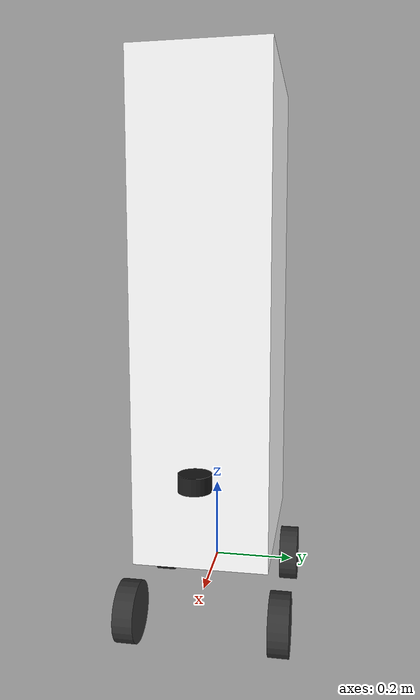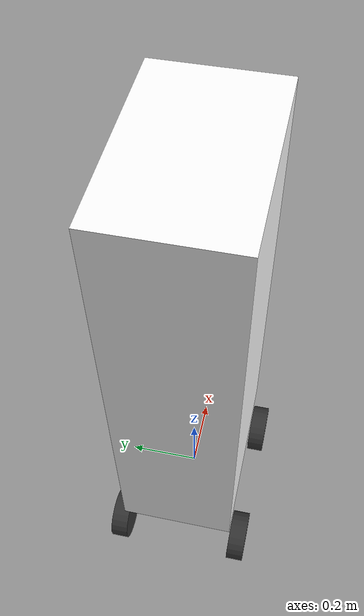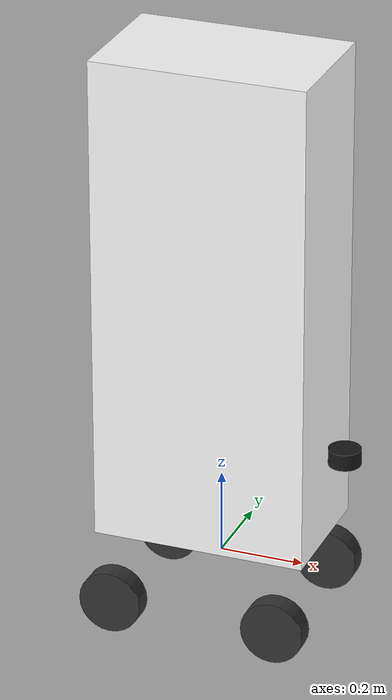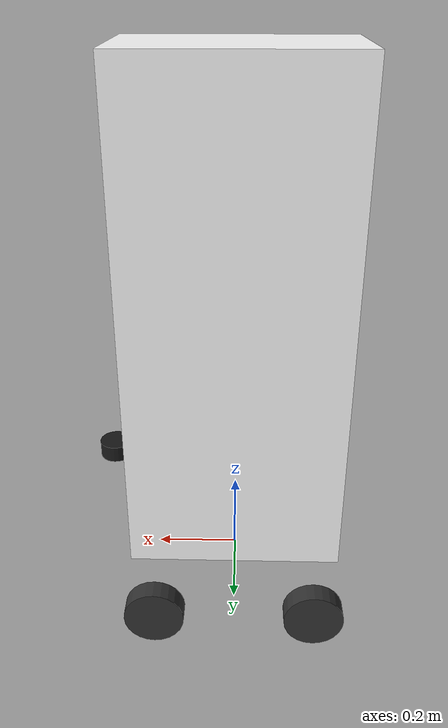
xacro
<?xml version="1.0"?>
<robot xmlns:xacro="http://www.ros.org/wiki/xacro" xmlns:gz="https://gazebosim.org/schemas" name="robot_3d">

    <xacro:property name="M_PI" value="3.1415926535897931" />

    <xacro:arg name="robot_name" default="robot_3d"/>
    <xacro:arg name="prefix" default=""/>
    <xacro:arg name="use_gazebo" default="false"/>

    <xacro:include filename="$(find bill_description)/urdf/mech/robot_3d_base.urdf.xacro"/>
    <xacro:include filename="$(find bill_description)/urdf/mech/mecanum_wheel.urdf.xacro"/>
    <xacro:include filename="$(find bill_description)/urdf/sensors/lidar.urdf.xacro"/>
    <xacro:include filename="$(find bill_description)/urdf/control/bill.gazebo"/>

    <xacro:robot_3d_base prefix="$(arg prefix)"/>

    <xacro:mecanum_wheel
      prefix="$(arg prefix)"
      side="front_left"
      x_reflect="1"
      y_reflect="1"/>

    <xacro:mecanum_wheel
      prefix="$(arg prefix)"
      side="front_right"
      x_reflect="1"
      y_reflect="-1"/>

    <xacro:mecanum_wheel
      prefix="$(arg prefix)"
      side="back_left"
      x_reflect="-1"
      y_reflect="1"/>

    <xacro:mecanum_wheel
      prefix="$(arg prefix)"
      side="back_right"
      x_reflect="-1"
      y_reflect="-1"/>

    <xacro:lidar_sensor
      prefix="$(arg prefix)"
      parent="base_link"
      frame_id="laser_link"
      xyz_offset="0.3 0 0.3"
      rpy_offset="0 0 0"
      topic_name="scan"/>

    <gazebo reference='front_left_wheel_link'>
      <collision>
        <surface>
          <friction>
            <ode>
              <mu>1.5</mu>
              <mu2>0.0</mu2>
              <fdir1 gz:expressed_in="base_footprint">1 -1 0</fdir1>
            </ode>
          </friction>
        </surface>
      </collision>
    </gazebo>

    <gazebo reference='back_left_wheel_link'>
      <collision>
        <surface>
          <friction>
            <ode>
              <mu>1.5</mu>
              <mu2>0.0</mu2>
              <fdir1 gz:expressed_in="base_footprint">1 1 0</fdir1>
            </ode>
          </friction>
        </surface>
      </collision>
    </gazebo>

    <gazebo reference='front_right_wheel_link'>
      <collision>
        <surface>
          <friction>
            <ode>
              <mu>1.5</mu>
              <mu2>0.0</mu2>
              <fdir1 gz:expressed_in="base_footprint">1 1 0</fdir1>
            </ode>
          </friction>
        </surface>
      </collision>
    </gazebo>

    <gazebo reference='back_right_wheel_link'>
      <collision>
        <surface>
          <friction>
            <ode>
              <mu>1.5</mu>
              <mu2>0.0</mu2>
              <fdir1 gz:expressed_in="base_footprint">1 -1 0</fdir1>
            </ode>
          </friction>
        </surface>
      </collision>
    </gazebo>

    <gazebo reference="base_link">
      <mu1>0.000002</mu1>
      <mu2>0.000002</mu2>
    </gazebo>

</robot>

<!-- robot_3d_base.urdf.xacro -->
<robot xmlns:xacro="http://www.ros.org/wiki/xacro">

  <!-- Novos parâmetros do chassi e rodas -->
  <xacro:property name="chassis_length" value="0.51"/>
  <xacro:property name="chassis_width" value="0.32"/>
  <xacro:property name="chassis_height" value="1.17"/>
  <xacro:property name="chassis_mass" value="22.2"/>
  <xacro:property name="wheel_radius" value="0.075"/>
  <xacro:property name="wheel_thickness" value="0.05"/>
  <xacro:property name="wheel_mass" value="0.2"/>
  <xacro:property name="wheel_offset_x" value="0.2"/>
  <xacro:property name="wheel_offset_y" value="${chassis_width/2 + wheel_thickness/2}"/>
  <xacro:property name="wheel_offset_z" value="0.0"/>

  <!-- Macro do corpo do robô -->
  <xacro:macro name="robot_3d_base" params="prefix">
    <link name="${prefix}base_footprint"/>

    <link name="${prefix}base_link">
      <visual>
        <geometry>
          <box size="${chassis_length} ${chassis_width} ${chassis_height}"/>
        </geometry>
        <material name="white">
          <color rgba="1 1 1 1"/>
        </material>
        <!-- Centro do chassi fica acima das rodas -->
        <origin xyz="0 0 ${chassis_height/2 + wheel_radius}" rpy="0 0 0"/>
      </visual>

      <collision>
        <geometry>
          <box size="${chassis_length} ${chassis_width} ${chassis_height}"/>
        </geometry>
        <origin xyz="0 0 ${chassis_height/2 + wheel_radius}" rpy="0 0 0"/>
      </collision>

      <inertial>
        <origin xyz="0 0 ${chassis_height/2 + wheel_radius}" rpy="0 0 0"/>
        <mass value="${chassis_mass}"/>
        <inertia
          ixx="${(1/12.0) * chassis_mass * (chassis_width * chassis_width + chassis_height * chassis_height)}"
          ixy="0.0"
          ixz="0.0"
          iyy="${(1/12.0) * chassis_mass * (chassis_length * chassis_length + chassis_height * chassis_height)}"
          iyz="0.0"
          izz="${(1/12.0) * chassis_mass * (chassis_length * chassis_length + chassis_width * chassis_width)}"/>
      </inertial>
    </link>

    <gazebo reference="${prefix}base_link">
      <visual>
        <material>
          <ambient>0 0.7 0 1</ambient>
          <diffuse>0 0.7 0 1</diffuse>
          <specular>0 0.7 0 1</specular>
        </material>
      </visual>
    </gazebo>

    <joint name="${prefix}base_joint" type="fixed">
      <parent link="${prefix}base_footprint"/>
      <child link="${prefix}base_link"/>
      <origin xyz="0 0 0" rpy="0 0 0"/>
    </joint>
  </xacro:macro>
</robot>

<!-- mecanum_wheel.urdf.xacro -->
<robot xmlns:xacro="http://www.ros.org/wiki/xacro">

  <!-- Novos parâmetros da roda -->
  <xacro:property name="wheel_radius" value="0.075"/>
  <xacro:property name="wheel_thickness" value="0.05"/>
  <xacro:property name="wheel_mass" value="0.2"/>
  <xacro:property name="wheel_offset_x" value="0.2"/>
  <xacro:property name="wheel_offset_y" value="${chassis_width/2 + wheel_thickness/2}"/>
  <xacro:property name="wheel_offset_z" value="0.0"/>

  <xacro:macro name="mecanum_wheel" params="prefix side x_reflect y_reflect">
    <link name="${prefix}${side}_wheel_link">
      <visual>
        <origin xyz="0 0 0" rpy="${pi/2} 0 0"/>
        <geometry>
          <cylinder radius="${wheel_radius}" length="${wheel_thickness}"/>
        </geometry>
        <material name="dark_gray">
          <color rgba="0.2 0.2 0.2 1.0"/>
        </material>
      </visual>

      <collision>
        <origin xyz="0 0 0" rpy="${pi/2} 0 0"/>
        <geometry>
          <cylinder radius="${wheel_radius}" length="${wheel_thickness}"/>
        </geometry>
      </collision>

      <inertial>
        <origin xyz="0 0 0" rpy="0 0 0"/>
        <mass value="${wheel_mass}"/>
        <inertia
          ixx="${(wheel_mass/12.0) * (3*wheel_radius*wheel_radius + wheel_thickness*wheel_thickness)}" ixy="0" ixz="0"
          iyy="${(wheel_mass/2.0) * (wheel_radius*wheel_radius)}" iyz="0"
          izz="${(wheel_mass/12.0) * (3*wheel_radius*wheel_radius + wheel_thickness*wheel_thickness)}"/>
      </inertial>
    </link>

    <joint name="${prefix}${side}_wheel_joint" type="continuous">
      <axis xyz="0 1 0"/>
      <parent link="${prefix}base_link"/>
      <child link="${prefix}${side}_wheel_link"/>
      <origin xyz="${x_reflect*wheel_offset_x} ${y_reflect*wheel_offset_y} ${wheel_offset_z - wheel_radius}" rpy="0 0 0"/>
    </joint>

    <gazebo reference="${prefix}${side}_wheel_link">
      <surface>
        <friction>
          <ode>
            <mu>1.0</mu>
            <mu2>0.0</mu2>
          </ode>
        </friction>
      </surface>
      <visual>
        <material>
          <ambient>0.2 0.2 0.2 1.0</ambient>
          <diffuse>0.2 0.2 0.2 1.0</diffuse>
          <specular>0.2 0.2 0.2 1.0</specular>
          <emissive>0.0 0.0 0.0 0.0</emissive>
        </material>
      </visual>
    </gazebo>
  </xacro:macro>
</robot>

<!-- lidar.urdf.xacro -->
<robot xmlns:xacro="http://www.ros.org/wiki/xacro">
  <xacro:property name="M_PI" value="3.1415926535897931" />

  <xacro:macro name="lidar_sensor" params="
    prefix:=''
    parent:='base_link'
    frame_id:='laser_link'
    xyz_offset:='0 0 0.0825'
    rpy_offset:='0 0 3.1415926535897931'
    lidar_width:=0.077
    lidar_height:=0.0398
    collision_xyz_offset:='0 0 0'
    collision_rpy_offset:='0 0 0'
    inertial_xyz_offset:='0 0 0'
    inertial_rpy_offset:='0 0 0'
    mass:=0.185
    material_name:='rplidar_black'
    material_color:='0.1 0.1 0.1 1'
    gazebo_material_ambient:='0.1 0.1 0.1 1'
    gazebo_material_diffuse:='0.1 0.1 0.1 1'
    gazebo_material_specular:='0.1 0.1 0.1 1'
    update_rate:=10
    ray_count:=720
    min_angle:='-0.8727'
    max_angle:='0.8727'
    min_range:='0.02'
    max_range:='12.0'
    range_resolution:='0.013'
    topic_name:='scan'
    always_on:=true
    visualize:=true
    enable_collision:=true">

    <xacro:property name="radius" value="${lidar_width/2}" />
    <xacro:property name="ixx_iyy" value="${(mass/12) * (3 * radius * radius + lidar_height * lidar_height)}" />
    <xacro:property name="izz" value="${(mass/2) * (radius * radius)}" />

    <link name="${prefix}${frame_id}">
      <visual>
        <origin xyz="0 0 0" rpy="0 0 0"/>
        <geometry>
          <cylinder radius="${radius}" length="${lidar_height}"/>
        </geometry>
        <material name="${material_name}">
          <color rgba="${material_color}"/>
        </material>
      </visual>

      <xacro:if value="${enable_collision}">
        <collision>
          <origin xyz="${collision_xyz_offset}" rpy="${collision_rpy_offset}"/>
          <geometry>
            <cylinder radius="${lidar_width/2}" length="${lidar_height}"/>
          </geometry>
        </collision>
      </xacro:if>

      <inertial>
        <mass value="${mass}" />
        <origin xyz="${inertial_xyz_offset}" rpy="${inertial_rpy_offset}"/>
        <inertia
          ixx="${ixx_iyy}"
          ixy="0.0"
          ixz="0.0"
          iyy="${ixx_iyy}"
          iyz="0.0"
          izz="${izz}" />
      </inertial>
    </link>

    <joint name="${prefix}${frame_id}_joint" type="fixed">
      <parent link="${prefix}${parent}"/>
      <child link="${prefix}${frame_id}" />
      <origin xyz="${xyz_offset}" rpy="${rpy_offset}"/>
    </joint>

    <gazebo reference="${prefix}${frame_id}">
      <material>
        <ambient>${gazebo_material_ambient}</ambient>
        <diffuse>${gazebo_material_diffuse}</diffuse>
        <specular>${gazebo_material_specular}</specular>
      </material>
      <sensor name="${prefix}lidar_sensor" type="gpu_lidar">
        <topic>${topic_name}</topic>
        <update_rate>${update_rate}</update_rate>
        <always_on>${always_on}</always_on>
        <visualize>${visualize}</visualize>
        <lidar>
          <scan>
            <horizontal>
              <samples>${ray_count}</samples>
              <resolution>1</resolution>
              <min_angle>${min_angle}</min_angle>
              <max_angle>${max_angle}</max_angle>
            </horizontal>
            <vertical>
              <samples>1</samples>
              <resolution>1</resolution>
              <min_angle>0</min_angle>
              <max_angle>0</max_angle>
            </vertical>
          </scan>
          <range>
            <min>${min_range}</min>
            <max>${max_range}</max>
            <resolution>${range_resolution}</resolution>
          </range>
        </lidar>
        <gz_frame_id>${prefix}${frame_id}</gz_frame_id>
      </sensor>
    </gazebo>
  </xacro:macro>
</robot>
